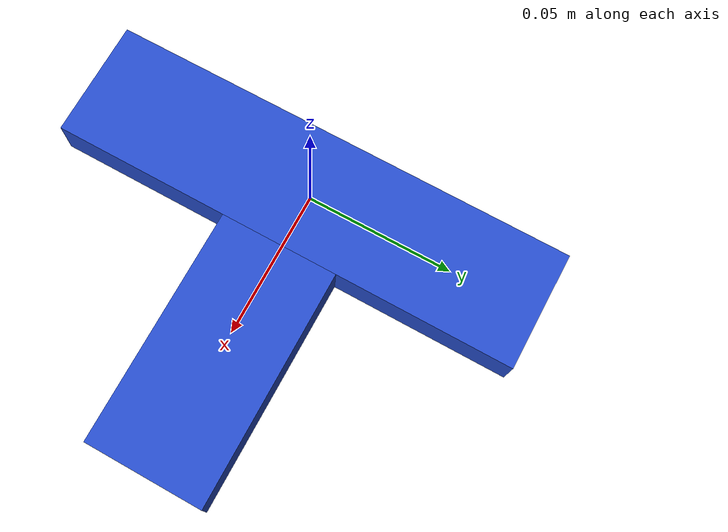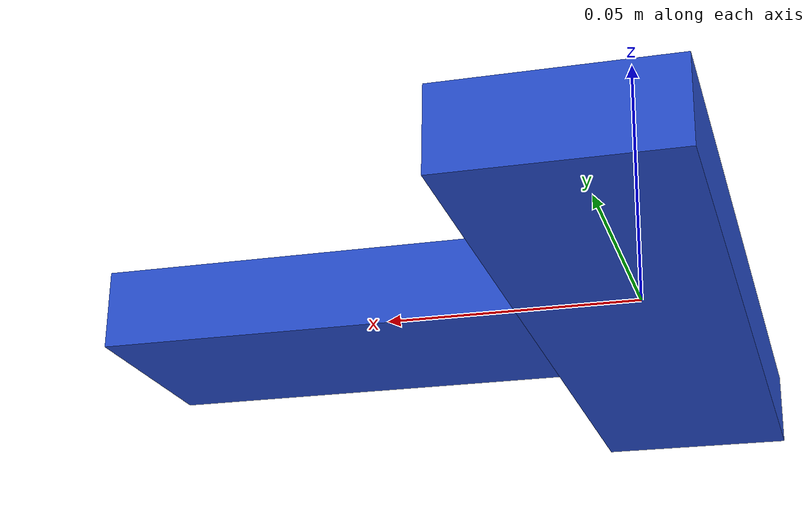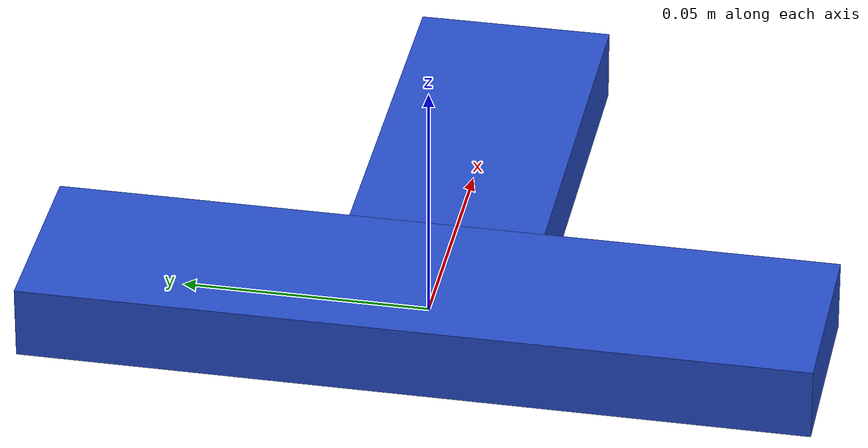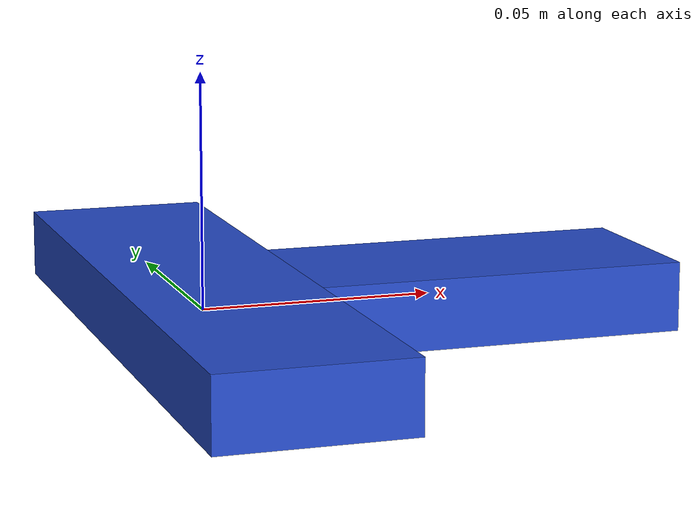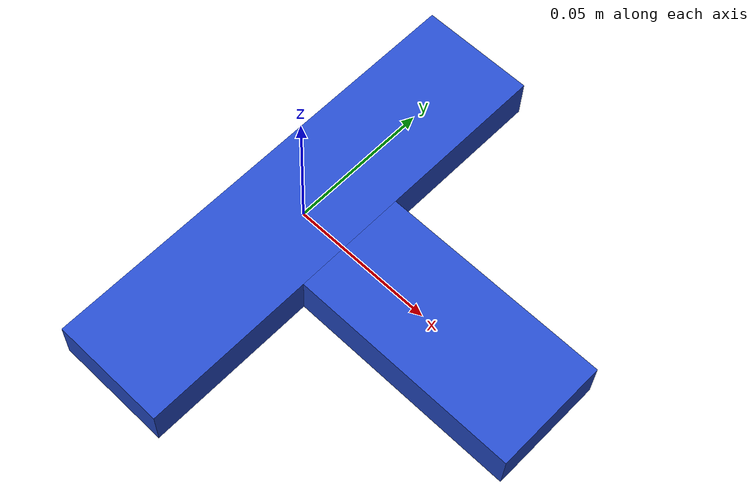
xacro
<?xml version="1.0"?>
<robot name="t_object" xmlns:xacro="http://www.ros.org/wiki/xacro">
  <xacro:arg name="scale" default="1.0"/>
  <xacro:property name="s" value="$(arg scale)"/>

  <link name="object_link">
    <inertial>
      <mass value="${0.05 * s * s * s}"/>
      <inertia ixx="0.0001" ixy="0" ixz="0" iyy="0.0001" iyz="0" izz="0.0001"/>
    </inertial>
    <collision><geometry><box size="${0.04*s} ${0.16*s} 0.015"/></geometry></collision>
    <visual><geometry><box size="${0.04*s} ${0.16*s} 0.015"/></geometry></visual>
    <collision>
      <origin xyz="${0.06*s} 0 0"/>
      <geometry><box size="${0.08*s} ${0.04*s} 0.015"/></geometry>
    </collision>
    <visual>
      <origin xyz="${0.06*s} 0 0"/>
      <geometry><box size="${0.08*s} ${0.04*s} 0.015"/></geometry>
    </visual>
  </link>
  <gazebo reference="object_link"><material>Gazebo/Blue</material></gazebo>
</robot>
